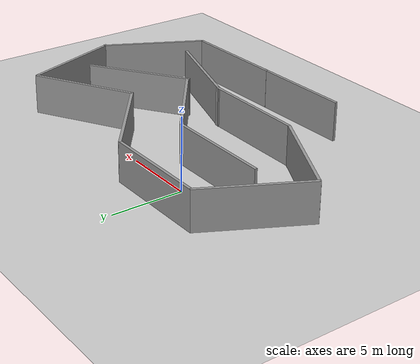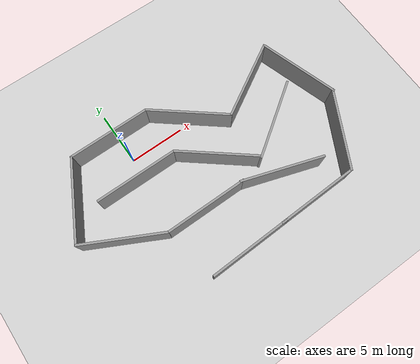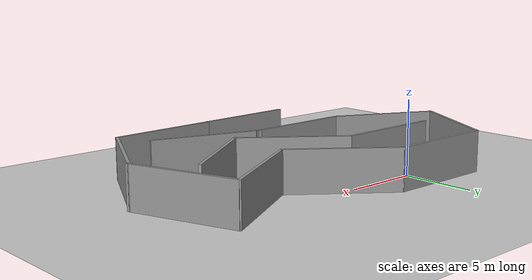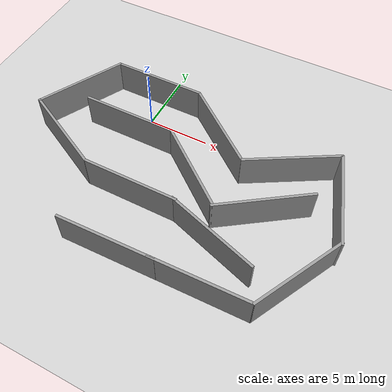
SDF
<sdf version="1.7">
 <world name="default">
  <light name="sun" type="directional">
   <pose>0 0 10 0 -0 0</pose>
   <diffuse>0.8 0.8 0.8 1</diffuse>
   <specular>0.2 0.2 0.2 1</specular>
   <attenuation>
    <range>1000</range>
    <constant>0.9</constant>
    <linear>0.01</linear>
    <quadratic>0.001</quadratic>
   </attenuation>
   <direction>-0.5 0.1 -0.9</direction>
   <spot><inner_angle>0</inner_angle><outer_angle>0</outer_angle><falloff>0</falloff></spot>
  </light>
  <model name="ground_plane">
   <static>1</static>
   <link name="link">
    <collision name="collision">
     <geometry><plane><normal>0 0 1</normal><size>100 100</size></plane></geometry>
     <surface>
      <contact><collide_bitmask>65535</collide_bitmask></contact>
      <friction><ode><mu>100</mu><mu2>50</mu2></ode></friction>
     </surface>
    </collision>
    <visual name="visual">
     <cast_shadows>0</cast_shadows>
     <geometry><plane><normal>0 0 1</normal><size>100 100</size></plane></geometry>
     <material>
      <script><uri>file://media/materials/scripts/gazebo.material</uri><name>Gazebo/Grey</name></script>
     </material>
    </visual>
   </link>
  </model>
  <gravity>0 0 -9.8</gravity>
  <magnetic_field>6e-06 2.3e-05 -4.2e-05</magnetic_field>
  <atmosphere type="adiabatic"/>
  <physics type="ode">
   <max_step_size>0.001</max_step_size>
   <real_time_factor>1</real_time_factor>
   <real_time_update_rate>1000</real_time_update_rate>
  </physics>
  <scene><ambient>0.4 0.4 0.4 1</ambient><background>0.7 0.7 0.7 1</background><shadows>1</shadows></scene>
  <spherical_coordinates>
   <surface_model>EARTH_WGS84</surface_model>
   <latitude_deg>0</latitude_deg>
   <longitude_deg>0</longitude_deg>
   <elevation>0</elevation>
   <heading_deg>0</heading_deg>
  </spherical_coordinates>
  <model name="grey_wall">
   <static>1</static>
   <link name="link">
    <pose>0 0 1.4 0 -0 0</pose>
    <collision name="collision"><geometry><box><size>7.5 0.2 2.8</size></box></geometry></collision>
    <visual name="visual">
     <cast_shadows>0</cast_shadows>
     <geometry><box><size>7.5 0.2 2.8</size></box></geometry>
     <material>
      <script>
       <uri>model://grey_wall/materials/scripts</uri>
       <uri>model://grey_wall/materials/textures</uri>
       <name>vrc/grey_wall</name>
      </script>
     </material>
    </visual>
   </link>
   <pose>-0.500108 2.33886 0 0 -0 0</pose>
  </model>
  <model name="grey_wall_0">
   <static>1</static>
   <link name="link">
    <pose>0 0 1.4 0 -0 0</pose>
    <collision name="collision"><geometry><box><size>7.5 0.2 2.8</size></box></geometry></collision>
    <visual name="visual">
     <cast_shadows>0</cast_shadows>
     <geometry><box><size>7.5 0.2 2.8</size></box></geometry>
     <material>
      <script>
       <uri>model://grey_wall/materials/scripts</uri>
       <uri>model://grey_wall/materials/textures</uri>
       <name>vrc/grey_wall</name>
      </script>
     </material>
    </visual>
   </link>
   <pose>-0.637535 -2.15584 0 0 -0 0</pose>
  </model>
  <model name="grey_wall_1">
   <static>1</static>
   <link name="link">
    <pose>0 0 1.4 0 -0 0</pose>
    <collision name="collision"><geometry><box><size>7.5 0.2 2.8</size></box></geometry></collision>
    <visual name="visual">
     <cast_shadows>0</cast_shadows>
     <geometry><box><size>7.5 0.2 2.8</size></box></geometry>
     <material>
      <script>
       <uri>model://grey_wall/materials/scripts</uri>
       <uri>model://grey_wall/materials/textures</uri>
       <name>vrc/grey_wall</name>
      </script>
     </material>
    </visual>
   </link>
   <pose>6.09152 0.023896 0 0 0 -0.674595</pose>
  </model>
  <model name="grey_wall_1_clone">
   <static>1</static>
   <link name="link">
    <pose>0 0 1.4 0 -0 0</pose>
    <collision name="collision"><geometry><box><size>7.5 0.2 2.8</size></box></geometry></collision>
    <visual name="visual">
     <cast_shadows>0</cast_shadows>
     <geometry><box><size>7.5 0.2 2.8</size></box></geometry>
     <material>
      <script>
       <uri>model://grey_wall/materials/scripts</uri>
       <uri>model://grey_wall/materials/textures</uri>
       <name>vrc/grey_wall</name>
      </script>
     </material>
    </visual>
   </link>
   <pose>5.99114 -4.47266 0 0 0 -0.674595</pose>
  </model>
  <model name="grey_wall_1_clone_0">
   <static>1</static>
   <link name="link">
    <pose>0 0 1.4 0 -0 0</pose>
    <collision name="collision"><geometry><box><size>7.5 0.2 2.8</size></box></geometry></collision>
    <visual name="visual">
     <cast_shadows>0</cast_shadows>
     <geometry><box><size>7.5 0.2 2.8</size></box></geometry>
     <material>
      <script>
       <uri>model://grey_wall/materials/scripts</uri>
       <uri>model://grey_wall/materials/textures</uri>
       <name>vrc/grey_wall</name>
      </script>
     </material>
    </visual>
   </link>
   <pose>-5.89081 -0.935749 0 0 -0 1.09175</pose>
  </model>
  <model name="grey_wall_clone">
   <static>1</static>
   <link name="link">
    <pose>0 0 1.4 0 -0 0</pose>
    <collision name="collision"><geometry><box><size>7.5 0.2 2.8</size></box></geometry></collision>
    <visual name="visual">
     <cast_shadows>0</cast_shadows>
     <geometry><box><size>7.5 0.2 2.8</size></box></geometry>
     <material>
      <script>
       <uri>model://grey_wall/materials/scripts</uri>
       <uri>model://grey_wall/materials/textures</uri>
       <name>vrc/grey_wall</name>
      </script>
     </material>
    </visual>
   </link>
   <pose>-4.3141 -5.86329 0 0 0 -0.473885</pose>
  </model>
  <model name="grey_wall_clone_0">
   <static>1</static>
   <link name="link">
    <pose>0 0 1.4 0 -0 0</pose>
    <collision name="collision"><geometry><box><size>7.5 0.2 2.8</size></box></geometry></collision>
    <visual name="visual">
     <cast_shadows>0</cast_shadows>
     <geometry><box><size>7.5 0.2 2.8</size></box></geometry>
     <material>
      <script>
       <uri>model://grey_wall/materials/scripts</uri>
       <uri>model://grey_wall/materials/textures</uri>
       <name>vrc/grey_wall</name>
      </script>
     </material>
    </visual>
   </link>
   <pose>2.71213 -7.5466 0 0 -0 0</pose>
  </model>
  <model name="grey_wall_1_clone_0_clone">
   <static>1</static>
   <link name="link">
    <pose>0 0 1.4 0 -0 0</pose>
    <collision name="collision"><geometry><box><size>7.5 0.2 2.8</size></box></geometry></collision>
    <visual name="visual">
     <cast_shadows>0</cast_shadows>
     <geometry><box><size>7.5 0.2 2.8</size></box></geometry>
     <material>
      <script>
       <uri>model://grey_wall/materials/scripts</uri>
       <uri>model://grey_wall/materials/textures</uri>
       <name>vrc/grey_wall</name>
      </script>
     </material>
    </visual>
   </link>
   <pose>11.7752 -4.72564 0 0 -0 0.610541</pose>
  </model>
  <model name="grey_wall_1_clone_0_clone_0">
   <static>1</static>
   <link name="link">
    <pose>0 0 1.4 0 -0 0</pose>
    <collision name="collision"><geometry><box><size>7.5 0.2 2.8</size></box></geometry></collision>
    <visual name="visual">
     <cast_shadows>0</cast_shadows>
     <geometry><box><size>7.5 0.2 2.8</size></box></geometry>
     <material>
      <script>
       <uri>model://grey_wall/materials/scripts</uri>
       <uri>model://grey_wall/materials/textures</uri>
       <name>vrc/grey_wall</name>
      </script>
     </material>
    </visual>
   </link>
   <pose>12.156 -0.404143 0 0 -0 0.531016</pose>
  </model>
  <model name="grey_wall_1_clone_0_clone_1">
   <static>1</static>
   <link name="link">
    <pose>0 0 1.4 0 -0 0</pose>
    <collision name="collision"><geometry><box><size>7.5 0.2 2.8</size></box></geometry></collision>
    <visual name="visual">
     <cast_shadows>0</cast_shadows>
     <geometry><box><size>7.5 0.2 2.8</size></box></geometry>
     <material>
      <script>
       <uri>model://grey_wall/materials/scripts</uri>
       <uri>model://grey_wall/materials/textures</uri>
       <name>vrc/grey_wall</name>
      </script>
     </material>
    </visual>
   </link>
   <pose>16.4761 -2.09652 0 0 -0 1.88257</pose>
  </model>
  <model name="grey_wall_1_clone_0_clone_2">
   <static>1</static>
   <link name="link">
    <pose>0 0 1.4 0 -0 0</pose>
    <collision name="collision"><geometry><box><size>7.5 0.2 2.8</size></box></geometry></collision>
    <visual name="visual">
     <cast_shadows>0</cast_shadows>
     <geometry><box><size>7.5 0.2 2.8</size></box></geometry>
     <material>
      <script>
       <uri>model://grey_wall/materials/scripts</uri>
       <uri>model://grey_wall/materials/textures</uri>
       <name>vrc/grey_wall</name>
      </script>
     </material>
    </visual>
   </link>
   <pose>15.8825 -8.73625 0 0 -0 1.09175</pose>
  </model>
  <model name="grey_wall_1_clone_0_clone_3">
   <static>1</static>
   <link name="link">
    <pose>0 0 1.4 0 -0 0</pose>
    <collision name="collision"><geometry><box><size>7.5 0.2 2.8</size></box></geometry></collision>
    <visual name="visual">
     <cast_shadows>0</cast_shadows>
     <geometry><box><size>7.5 0.2 2.8</size></box></geometry>
     <material>
      <script>
       <uri>model://grey_wall/materials/scripts</uri>
       <uri>model://grey_wall/materials/textures</uri>
       <name>vrc/grey_wall</name>
      </script>
     </material>
    </visual>
   </link>
   <pose>10.5153 -12.0946 0 0 -0 -3.114</pose>
  </model>
  <model name="grey_wall_1_clone_0_clone_clone">
   <static>1</static>
   <link name="link">
    <pose>0 0 1.4 0 -0 0</pose>
    <collision name="collision"><geometry><box><size>7.5 0.2 2.8</size></box></geometry></collision>
    <visual name="visual">
     <cast_shadows>0</cast_shadows>
     <geometry><box><size>7.5 0.2 2.8</size></box></geometry>
     <material>
      <script>
       <uri>model://grey_wall/materials/scripts</uri>
       <uri>model://grey_wall/materials/textures</uri>
       <name>vrc/grey_wall</name>
      </script>
     </material>
    </visual>
   </link>
   <pose>9.61686 -8.63726 0 0 0 -0.314173</pose>
  </model>
  <model name="grey_wall_1_clone_0_clone_3_clone">
   <static>1</static>
   <link name="link">
    <pose>0 0 1.4 0 -0 0</pose>
    <collision name="collision"><geometry><box><size>7.5 0.2 2.8</size></box></geometry></collision>
    <visual name="visual">
     <cast_shadows>0</cast_shadows>
     <geometry><box><size>7.5 0.2 2.8</size></box></geometry>
     <material>
      <script>
       <uri>model://grey_wall/materials/scripts</uri>
       <uri>model://grey_wall/materials/textures</uri>
       <name>vrc/grey_wall</name>
      </script>
     </material>
    </visual>
   </link>
   <pose>3.6539 -12.2903 0 0 0 -3.114</pose>
  </model>
 </world>
</sdf>
